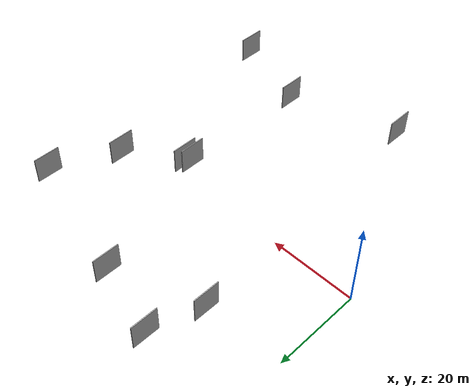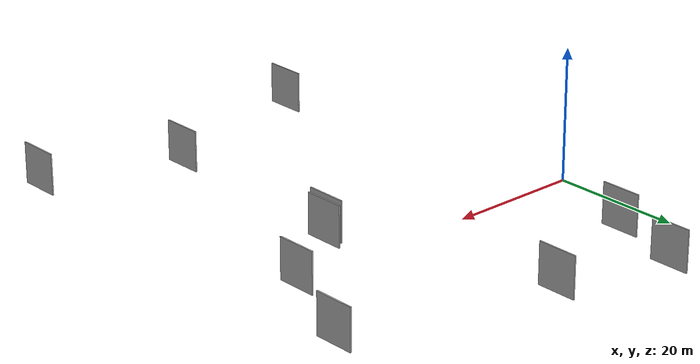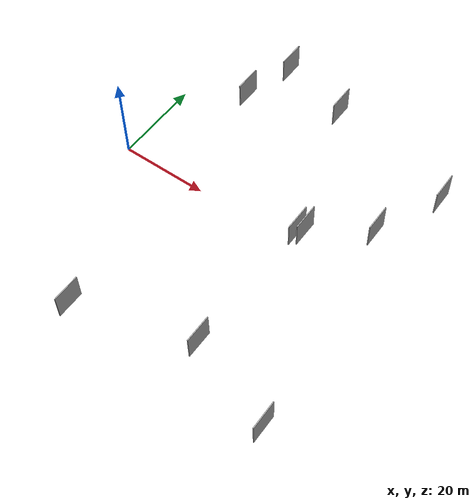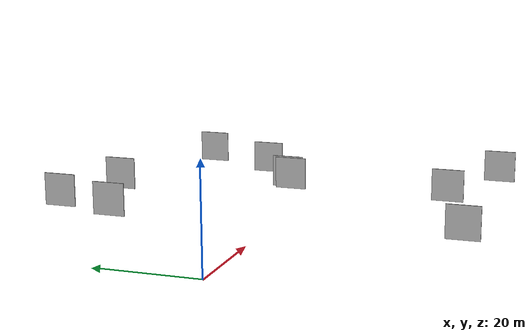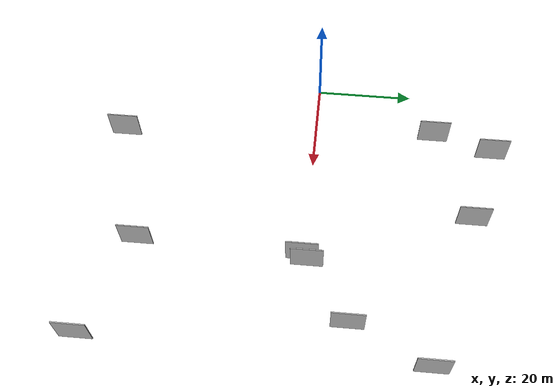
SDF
<sdf version="1.6">
 <world name="default">
  <scene>
   <sky><clouds><speed>12</speed></clouds></sky>
   <ambient>0.4 0.4 0.4 1</ambient>
   <background>0.7 0.7 0.7 1</background>
   <shadows>1</shadows>
  </scene>
  <gravity>0 0 -9.8066</gravity>
  <magnetic_field>6e-06 2.3e-05 -4.2e-05</magnetic_field>
  <physics default="0" name="default_physics" type="ode">
   <ode>
    <solver>
     <type>quick</type>
     <iters>10</iters>
     <sor>1.0</sor>
     <use_dynamic_moi_rescaling>0</use_dynamic_moi_rescaling>
    </solver>
    <constraints>
     <cfm>0</cfm>
     <erp>0.2</erp>
     <contact_max_correcting_vel>100</contact_max_correcting_vel>
     <contact_surface_layer>0.001</contact_surface_layer>
    </constraints>
   </ode>
   <max_step_size>0.004</max_step_size>
   <real_time_factor>1</real_time_factor>
   <real_time_update_rate>250</real_time_update_rate>
  </physics>
  <light name="sun" type="directional">
   <pose>0 0 10 0 0 0</pose>
   <diffuse>0.8 0.8 0.8 1</diffuse>
   <specular>0.2 0.2 0.2 1</specular>
   <attenuation>
    <range>1000</range>
    <constant>0.9</constant>
    <linear>0.01</linear>
    <quadratic>0.001</quadratic>
   </attenuation>
   <direction>-0.5 0.1 -0.9</direction>
  </light>
  <model name="grey_wall_1">
   <static>1</static>
   <pose>34.5095 31.2051 5.0 0.000000 0.000000 1.570796</pose>
   <link name="link">
    <pose>0 0 3.00 0 0 0</pose>
    <collision name="collision"><geometry><box><size>6.00 0.2 6.00</size></box></geometry></collision>
    <visual name="visual">
     <cast_shadows>0</cast_shadows>
     <geometry><box><size>6.00 0.2 6.00</size></box></geometry>
     <material>
      <script>
       <uri>model://HANNAS_wall/materials/scripts</uri>
       <uri>model://HANNAS_wall/materials/textures</uri>
       <name>vrc/HANNAS_wall</name>
      </script>
     </material>
    </visual>
   </link>
  </model>
  <model name="grey_wall_2">
   <static>1</static>
   <pose>15.0155 24.0258 5.0 0.000000 0.000000 1.570796</pose>
   <link name="link">
    <pose>0 0 3.00 0 0 0</pose>
    <collision name="collision"><geometry><box><size>6.00 0.2 6.00</size></box></geometry></collision>
    <visual name="visual">
     <cast_shadows>0</cast_shadows>
     <geometry><box><size>6.00 0.2 6.00</size></box></geometry>
     <material>
      <script>
       <uri>model://HANNAS_wall/materials/scripts</uri>
       <uri>model://HANNAS_wall/materials/textures</uri>
       <name>vrc/HANNAS_wall</name>
      </script>
     </material>
    </visual>
   </link>
  </model>
  <model name="grey_wall_3">
   <static>1</static>
   <pose>64.1230 23.2753 5.0 0.000000 0.000000 1.570796</pose>
   <link name="link">
    <pose>0 0 3.00 0 0 0</pose>
    <collision name="collision"><geometry><box><size>6.00 0.2 6.00</size></box></geometry></collision>
    <visual name="visual">
     <cast_shadows>0</cast_shadows>
     <geometry><box><size>6.00 0.2 6.00</size></box></geometry>
     <material>
      <script>
       <uri>model://HANNAS_wall/materials/scripts</uri>
       <uri>model://HANNAS_wall/materials/textures</uri>
       <name>vrc/HANNAS_wall</name>
      </script>
     </material>
    </visual>
   </link>
  </model>
  <model name="grey_wall_4">
   <static>1</static>
   <pose>57.4389 8.7624 5.0 0.000000 0.000000 1.570796</pose>
   <link name="link">
    <pose>0 0 3.00 0 0 0</pose>
    <collision name="collision"><geometry><box><size>6.00 0.2 6.00</size></box></geometry></collision>
    <visual name="visual">
     <cast_shadows>0</cast_shadows>
     <geometry><box><size>6.00 0.2 6.00</size></box></geometry>
     <material>
      <script>
       <uri>model://HANNAS_wall/materials/scripts</uri>
       <uri>model://HANNAS_wall/materials/textures</uri>
       <name>vrc/HANNAS_wall</name>
      </script>
     </material>
    </visual>
   </link>
  </model>
  <model name="grey_wall_5">
   <static>1</static>
   <pose>63.3216 -37.8005 5.0 0.000000 0.000000 1.570796</pose>
   <link name="link">
    <pose>0 0 3.00 0 0 0</pose>
    <collision name="collision"><geometry><box><size>6.00 0.2 6.00</size></box></geometry></collision>
    <visual name="visual">
     <cast_shadows>0</cast_shadows>
     <geometry><box><size>6.00 0.2 6.00</size></box></geometry>
     <material>
      <script>
       <uri>model://HANNAS_wall/materials/scripts</uri>
       <uri>model://HANNAS_wall/materials/textures</uri>
       <name>vrc/HANNAS_wall</name>
      </script>
     </material>
    </visual>
   </link>
  </model>
  <model name="grey_wall_6">
   <static>1</static>
   <pose>18.5110 35.5556 5.0 0.000000 0.000000 1.570796</pose>
   <link name="link">
    <pose>0 0 3.00 0 0 0</pose>
    <collision name="collision"><geometry><box><size>6.00 0.2 6.00</size></box></geometry></collision>
    <visual name="visual">
     <cast_shadows>0</cast_shadows>
     <geometry><box><size>6.00 0.2 6.00</size></box></geometry>
     <material>
      <script>
       <uri>model://HANNAS_wall/materials/scripts</uri>
       <uri>model://HANNAS_wall/materials/textures</uri>
       <name>vrc/HANNAS_wall</name>
      </script>
     </material>
    </visual>
   </link>
  </model>
  <model name="grey_wall_7">
   <static>1</static>
   <pose>45.8838 0.7585 5.0 0.000000 0.000000 1.570796</pose>
   <link name="link">
    <pose>0 0 3.00 0 0 0</pose>
    <collision name="collision"><geometry><box><size>6.00 0.2 6.00</size></box></geometry></collision>
    <visual name="visual">
     <cast_shadows>0</cast_shadows>
     <geometry><box><size>6.00 0.2 6.00</size></box></geometry>
     <material>
      <script>
       <uri>model://HANNAS_wall/materials/scripts</uri>
       <uri>model://HANNAS_wall/materials/textures</uri>
       <name>vrc/HANNAS_wall</name>
      </script>
     </material>
    </visual>
   </link>
  </model>
  <model name="grey_wall_8">
   <static>1</static>
   <pose>44.6533 -0.2270 5.0 0.000000 0.000000 1.570796</pose>
   <link name="link">
    <pose>0 0 3.00 0 0 0</pose>
    <collision name="collision"><geometry><box><size>6.00 0.2 6.00</size></box></geometry></collision>
    <visual name="visual">
     <cast_shadows>0</cast_shadows>
     <geometry><box><size>6.00 0.2 6.00</size></box></geometry>
     <material>
      <script>
       <uri>model://HANNAS_wall/materials/scripts</uri>
       <uri>model://HANNAS_wall/materials/textures</uri>
       <name>vrc/HANNAS_wall</name>
      </script>
     </material>
    </visual>
   </link>
  </model>
  <model name="grey_wall_9">
   <static>1</static>
   <pose>43.9596 -31.1219 5.0 0.000000 0.000000 1.570796</pose>
   <link name="link">
    <pose>0 0 3.00 0 0 0</pose>
    <collision name="collision"><geometry><box><size>6.00 0.2 6.00</size></box></geometry></collision>
    <visual name="visual">
     <cast_shadows>0</cast_shadows>
     <geometry><box><size>6.00 0.2 6.00</size></box></geometry>
     <material>
      <script>
       <uri>model://HANNAS_wall/materials/scripts</uri>
       <uri>model://HANNAS_wall/materials/textures</uri>
       <name>vrc/HANNAS_wall</name>
      </script>
     </material>
    </visual>
   </link>
  </model>
  <model name="grey_wall_10">
   <static>1</static>
   <pose>18.8443 -38.6037 5.0 0.000000 0.000000 1.570796</pose>
   <link name="link">
    <pose>0 0 3.00 0 0 0</pose>
    <collision name="collision"><geometry><box><size>6.00 0.2 6.00</size></box></geometry></collision>
    <visual name="visual">
     <cast_shadows>0</cast_shadows>
     <geometry><box><size>6.00 0.2 6.00</size></box></geometry>
     <material>
      <script>
       <uri>model://HANNAS_wall/materials/scripts</uri>
       <uri>model://HANNAS_wall/materials/textures</uri>
       <name>vrc/HANNAS_wall</name>
      </script>
     </material>
    </visual>
   </link>
  </model>
 </world>
</sdf>
